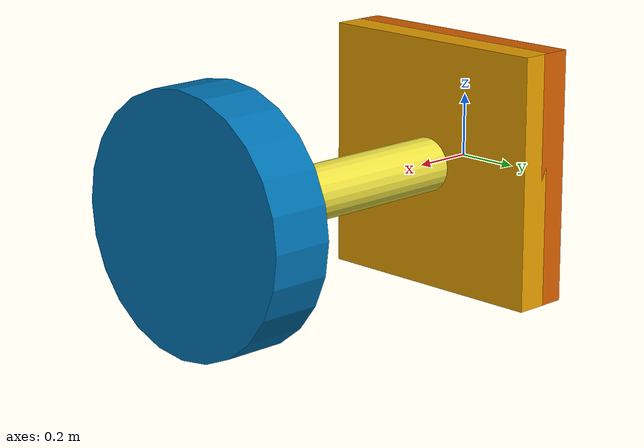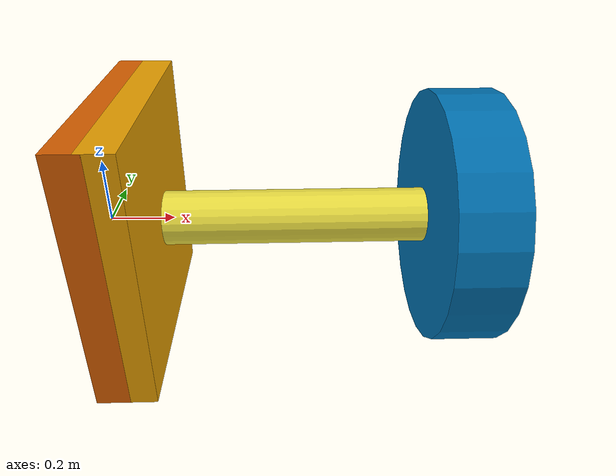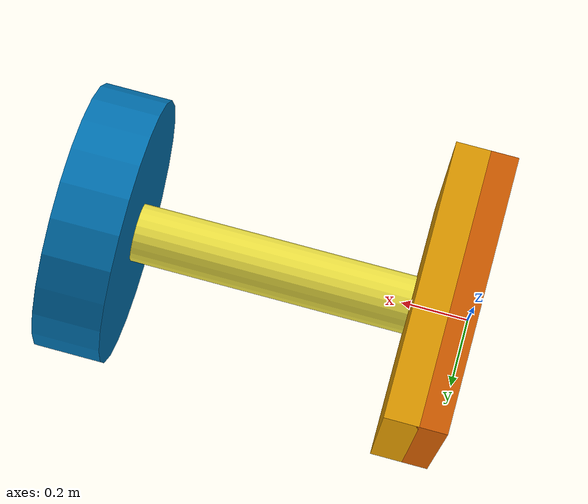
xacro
<?xml version="1.0" ?>
<robot name="bioin_sensor">
  <link name="base_link">
    <inertial>
      <mass value="100"/>
      <origin xyz="0 0 0" rpy="0 1.5708 0"/>
      <inertia ixx="0.00711749" ixy="0" ixz="0" iyy="0.00711749" iyz="0" izz="0.0141333"/>
    </inertial>
    <collision>
      <origin xyz="0 0 0" rpy="0 1.5708 0"/>
      <geometry>
        <box size="1 1 0.08"/>
      </geometry>
    </collision>
    <visual>
      <origin xyz="0 0 0" rpy="0 1.5708 0"/>
      <geometry>
        <box size="0.8 0.8 0.1"/>
      </geometry>
    </visual>
  </link>
  <link name="virtual_link_1">
    <inertial>
      <mass value="0.00456564"/>
      <origin xyz="0 0 0" rpy="0 1.5708 0"/>
      <inertia ixx="1.256e-05" ixy="0" ixz="0" iyy="1.256e-05" iyz="0" izz="1.256e-05"/>
    </inertial>
    <collision>
      <origin xyz="0 0 0" rpy="0 1.5708 0"/>
      <geometry>
        <sphere radius="0.082945"/>
      </geometry>
    </collision>
    <visual>
      <origin xyz="0 0 0" rpy="0 1.5708 0"/>
      <geometry>
        <sphere radius="0.0001"/>
      </geometry>
    </visual>
  </link>
  <link name="virtual_link_2">
    <inertial>
      <mass value="0.00456564"/>
      <origin xyz="0 0 0" rpy="0 1.5708 0"/>
      <inertia ixx="1.256e-05" ixy="0" ixz="0" iyy="1.256e-05" iyz="0" izz="1.256e-05"/>
    </inertial>
    <collision>
      <origin xyz="0 0 0" rpy="0 1.5708 0"/>
      <geometry>
        <sphere radius="0.082945"/>
      </geometry>
    </collision>
    <visual>
      <origin xyz="0 0 0" rpy="0 1.5708 0"/>
      <geometry>
        <sphere radius="0.0001"/>
      </geometry>
    </visual>
  </link>
  <link name="virtual_link_3">
    <inertial>
      <mass value="0.00809968"/>
      <origin xyz="0 0 0" rpy="0 1.5708 0"/>
      <inertia ixx="6.43688e-05" ixy="0" ixz="0" iyy="6.43688e-05" iyz="0" izz="3.04428e-05"/>
    </inertial>
    <collision>
      <origin xyz="0 0 0" rpy="0 1.57080 0"/>
      <geometry>
        <cylinder radius="0.086701" length="0.26984"/>
      </geometry>
    </collision>
    <visual>
      <origin xyz="0 0 0" rpy="0 1.5708 0"/>
      <geometry>
        <cylinder radius="0.0867008" length="0.85"/>
      </geometry>
    </visual>
  </link>
  <link name="top_link">
    <inertial>
      <mass value="0.1"/>
      <origin xyz="0 0 0" rpy="0 1.5708 0"/>
      <inertia ixx="0.00662949" ixy="0" ixz="0" iyy="0.00662949" iyz="0" izz="0.0130685"/>
    </inertial>
    <collision>
      <origin xyz="0 0 0" rpy="0 1.5708 0"/>
      <geometry>
        <cylinder radius="0.5" length="0.1"/>
      </geometry>
    </collision>
    <visual>
      <origin xyz="0 0 0" rpy="0 1.5708 0"/>
      <geometry>
        <cylinder radius="0.4" length="0.2"/>
      </geometry>
    </visual>
  </link>
  <link name="subbase_link">
    <inertial>
      <mass value="100"/>
      <origin xyz="0 0 0" rpy="0 1.5708 0"/>
      <inertia ixx="0.00711749" ixy="0" ixz="0" iyy="0.00711749" iyz="0" izz="0.0141333"/>
    </inertial>
    <collision>
      <origin xyz="0.04 0 0" rpy="0 1.5708 0"/>
      <geometry>
        <box size="1 1 0.08"/>
      </geometry>
    </collision>
    <visual>
      <origin xyz="0.04 0 0 " rpy="0 1.5708 0"/>
      <geometry>
        <box size="0.8 0.8 0.1"/>
      </geometry>
    </visual>
  </link>
  <joint name="rev_x_joint" type="revolute">
    <parent link="base_link"/>
    <child link="virtual_link_1"/>
    <origin xyz="-0.02 0 0 " rpy="0 0 0"/>
    <axis xyz="1 0 0"/>
    <limit lower="-1.5708" upper="1.5708" effort="-1.0" velocity="-1.0"/>
    <dynamics damping="1.0" friction="0.0"/>
  </joint>
  <joint name="rev_y_joint" type="revolute">
    <parent link="virtual_link_1"/>
    <child link="virtual_link_2"/>
    <origin xyz="0.1 0 0" rpy="0 0 0"/>
    <axis xyz="0 1 0"/>
    <limit lower="-1.5708" upper="1.5708" effort="-1.0" velocity="-1.0"/>
    <dynamics damping="1.0" friction="0.0"/>
  </joint>
  <joint name="rev_z_joint" type="revolute">
    <parent link="virtual_link_2"/>
    <child link="virtual_link_3"/>
    <origin xyz="0.3991 0 0 " rpy="0 0 0"/>
    <axis xyz="0 0 1"/>
    <limit lower="-1.5708" upper="1.5708" effort="-1.0" velocity="-1.0"/>
    <dynamics damping="1.0" friction="0.0"/>
  </joint>
  <joint name="prismatic_joint" type="prismatic">
    <parent link="virtual_link_3"/>
    <child link="top_link"/>
    <origin xyz="0.50089 0 0 " rpy="0 0 0"/>
    <axis xyz="1 0 0"/>
    <limit lower="-0.5" upper="0.5" effort="-1.0" velocity="-1.0"/>
    <dynamics damping="3.0" friction="0.0"/>
  </joint>
  <joint name="fixed_joint" type="fixed">
    <parent link="subbase_link"/>
    <child link="base_link"/>
    <origin xyz="0.12 0 0 " rpy="0 0 0"/>
  </joint>
  <gazebo reference="rev_x_joint">
    <implicitSpringDamper>True</implicitSpringDamper>
    <springReference>0</springReference>
    <springStiffness>10</springStiffness>
  </gazebo>
  <gazebo reference="rev_y_joint">
    <implicitSpringDamper>True</implicitSpringDamper>
    <springReference>0</springReference>
    <springStiffness>10</springStiffness>
  </gazebo>
  <gazebo reference="rev_z_joint">
    <implicitSpringDamper>True</implicitSpringDamper>
    <springReference>0</springReference>
    <springStiffness>10</springStiffness>
  </gazebo>
  <gazebo reference="prismatic_joint">
    <implicitSpringDamper>True</implicitSpringDamper>
    <springReference>0</springReference>
    <springStiffness>20</springStiffness>
  </gazebo>
  <gazebo>
    <plugin name="JointStatePublisher" filename="libJointStatePublisher.so">
      <publish_selected_only>true</publish_selected_only>
      <joint>prismatic_joint</joint>
    </plugin>
  </gazebo>
  <gazebo reference="top_link">
    <gravity>true</gravity>
    <sensor name="imu_sensor" type="imu">
      <always_on>true</always_on>
      <update_rate>120</update_rate>
      <visualize>true</visualize>
      <topic>__default_topic__</topic>
      <plugin filename="libgazebo_ros_imu_sensor.so" name="imu_plugin">
        <topicName>imu</topicName>
        <bodyName>top_link</bodyName>
        <updateRateHZ>10.0</updateRateHZ>
        <gaussianNoise>0.001</gaussianNoise>
        <xyzOffset>0 0 0</xyzOffset>
        <rpyOffset>0 0 0</rpyOffset>
        <frameName>top_link</frameName>
        <initialOrientationAsReference>false</initialOrientationAsReference>
      </plugin>
      <pose>0 0 0 0 0 0</pose>
    </sensor>
  </gazebo>
</robot>
